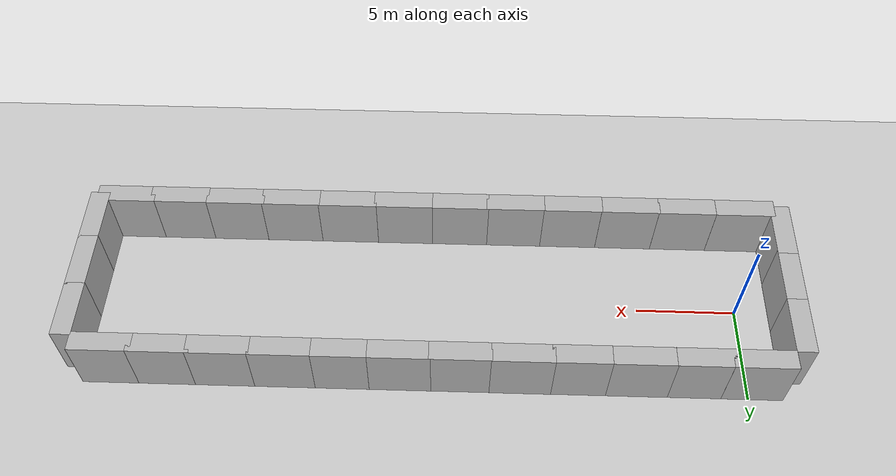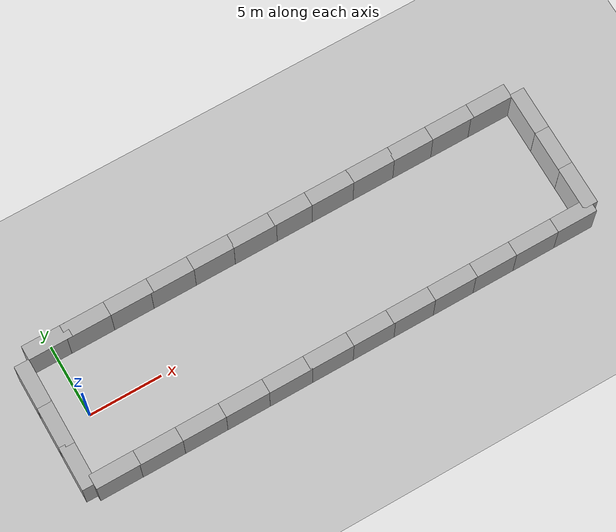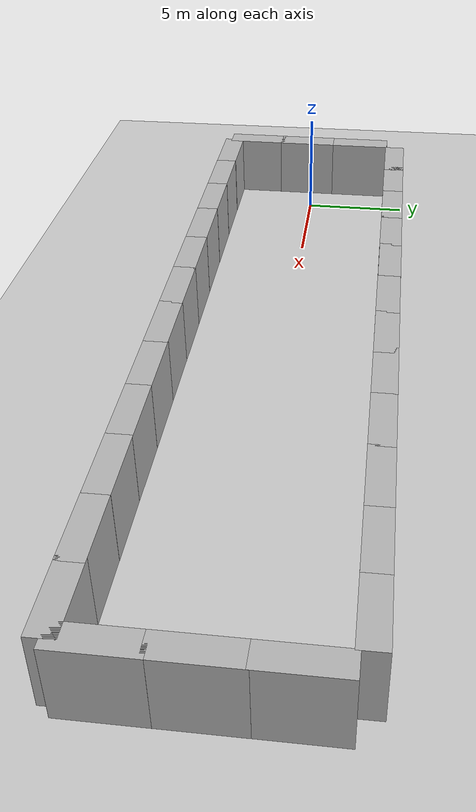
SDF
<sdf version="1.6">
 <world name="default">
  <light name="sun" type="directional">
   <pose>0 0 10 0 -0 0</pose>
   <diffuse>0.8 0.8 0.8 1</diffuse>
   <specular>0.2 0.2 0.2 1</specular>
   <attenuation>
    <range>1000</range>
    <constant>0.9</constant>
    <linear>0.01</linear>
    <quadratic>0.001</quadratic>
   </attenuation>
   <direction>-0.5 0.1 -0.9</direction>
  </light>
  <model name="ground_plane">
   <static>1</static>
   <link name="link">
    <collision name="collision">
     <geometry><plane><normal>0 0 1</normal><size>100 100</size></plane></geometry>
     <surface><friction><ode><mu>100</mu><mu2>50</mu2></ode></friction></surface>
    </collision>
    <visual name="visual">
     <cast_shadows>0</cast_shadows>
     <geometry><plane><normal>0 0 1</normal><size>100 100</size></plane></geometry>
     <material>
      <script><uri>file://media/materials/scripts/gazebo.material</uri><name>Gazebo/Grey</name></script>
     </material>
    </visual>
   </link>
  </model>
  <gravity>0 0 -9.8</gravity>
  <magnetic_field>6e-06 2.3e-05 -4.2e-05</magnetic_field>
  <atmosphere type="adiabatic"/>
  <physics name="default_physics" default="0" type="ode">
   <max_step_size>0.001</max_step_size>
   <real_time_factor>1</real_time_factor>
   <real_time_update_rate>1000</real_time_update_rate>
  </physics>
  <scene><ambient>0.4 0.4 0.4 1</ambient><background>0.7 0.7 0.7 1</background><shadows>1</shadows></scene>
  <spherical_coordinates>
   <surface_model>EARTH_WGS84</surface_model>
   <latitude_deg>0</latitude_deg>
   <longitude_deg>0</longitude_deg>
   <elevation>0</elevation>
   <heading_deg>0</heading_deg>
  </spherical_coordinates>
  <model name="brick_box_3x1x3">
   <static>1</static>
   <link name="chassis">
    <pose>0 0 1.5 0 -0 0</pose>
    <collision name="collision"><geometry><box><size>3 1 3</size></box></geometry></collision>
    <visual name="visual">
     <geometry><mesh><uri>model://brick_box_3x1x3/meshes/simple_box.dae</uri><scale>3 1 3</scale></mesh></geometry>
     <material>
      <script>
       <uri>model://brick_box_3x1x3/materials/scripts</uri>
       <uri>model://brick_box_3x1x3/materials/textures</uri>
       <name>BrickBox/Diffuse</name>
      </script>
     </material>
    </visual>
   </link>
   <pose>-0.184264 4.51435 0 0 -0 0</pose>
  </model>
  <model name="brick_box_3x1x3_clone">
   <static>1</static>
   <link name="chassis">
    <pose>0 0 1.5 0 -0 0</pose>
    <collision name="collision"><geometry><box><size>3 1 3</size></box></geometry></collision>
    <visual name="visual">
     <geometry><mesh><uri>model://brick_box_3x1x3/meshes/simple_box.dae</uri><scale>3 1 3</scale></mesh></geometry>
     <material>
      <script>
       <uri>model://brick_box_3x1x3/materials/scripts</uri>
       <uri>model://brick_box_3x1x3/materials/textures</uri>
       <name>BrickBox/Diffuse</name>
      </script>
     </material>
    </visual>
   </link>
   <pose>2.43819 4.50986 0 0 -0 0</pose>
  </model>
  <model name="brick_box_3x1x3_clone_clone">
   <static>1</static>
   <link name="chassis">
    <pose>0 0 1.5 0 -0 0</pose>
    <collision name="collision"><geometry><box><size>3 1 3</size></box></geometry></collision>
    <visual name="visual">
     <geometry><mesh><uri>model://brick_box_3x1x3/meshes/simple_box.dae</uri><scale>3 1 3</scale></mesh></geometry>
     <material>
      <script>
       <uri>model://brick_box_3x1x3/materials/scripts</uri>
       <uri>model://brick_box_3x1x3/materials/textures</uri>
       <name>BrickBox/Diffuse</name>
      </script>
     </material>
    </visual>
   </link>
   <pose>5.40727 4.51344 0 0 -0 0</pose>
  </model>
  <model name="brick_box_3x1x3_clone_clone_clone">
   <static>1</static>
   <link name="chassis">
    <pose>0 0 1.5 0 -0 0</pose>
    <collision name="collision"><geometry><box><size>3 1 3</size></box></geometry></collision>
    <visual name="visual">
     <geometry><mesh><uri>model://brick_box_3x1x3/meshes/simple_box.dae</uri><scale>3 1 3</scale></mesh></geometry>
     <material>
      <script>
       <uri>model://brick_box_3x1x3/materials/scripts</uri>
       <uri>model://brick_box_3x1x3/materials/textures</uri>
       <name>BrickBox/Diffuse</name>
      </script>
     </material>
    </visual>
   </link>
   <pose>8.21704 4.51221 0 0 -0 0</pose>
  </model>
  <model name="brick_box_3x1x3_clone_clone_clone_0">
   <static>1</static>
   <link name="chassis">
    <pose>0 0 1.5 0 -0 0</pose>
    <collision name="collision"><geometry><box><size>3 1 3</size></box></geometry></collision>
    <visual name="visual">
     <geometry><mesh><uri>model://brick_box_3x1x3/meshes/simple_box.dae</uri><scale>3 1 3</scale></mesh></geometry>
     <material>
      <script>
       <uri>model://brick_box_3x1x3/materials/scripts</uri>
       <uri>model://brick_box_3x1x3/materials/textures</uri>
       <name>BrickBox/Diffuse</name>
      </script>
     </material>
    </visual>
   </link>
   <pose>11.0675 4.51905 0 0 -0 0</pose>
  </model>
  <model name="brick_box_3x1x3_clone_clone_clone_0_clone">
   <static>1</static>
   <link name="chassis">
    <pose>0 0 1.5 0 -0 0</pose>
    <collision name="collision"><geometry><box><size>3 1 3</size></box></geometry></collision>
    <visual name="visual">
     <geometry><mesh><uri>model://brick_box_3x1x3/meshes/simple_box.dae</uri><scale>3 1 3</scale></mesh></geometry>
     <material>
      <script>
       <uri>model://brick_box_3x1x3/materials/scripts</uri>
       <uri>model://brick_box_3x1x3/materials/textures</uri>
       <name>BrickBox/Diffuse</name>
      </script>
     </material>
    </visual>
   </link>
   <pose>14.0062 4.51125 0 0 -0 0</pose>
  </model>
  <model name="brick_box_3x1x3_clone_clone_clone_0_clone_0">
   <static>1</static>
   <link name="chassis">
    <pose>0 0 1.5 0 -0 0</pose>
    <collision name="collision"><geometry><box><size>3 1 3</size></box></geometry></collision>
    <visual name="visual">
     <geometry><mesh><uri>model://brick_box_3x1x3/meshes/simple_box.dae</uri><scale>3 1 3</scale></mesh></geometry>
     <material>
      <script>
       <uri>model://brick_box_3x1x3/materials/scripts</uri>
       <uri>model://brick_box_3x1x3/materials/textures</uri>
       <name>BrickBox/Diffuse</name>
      </script>
     </material>
    </visual>
   </link>
   <pose>16.905 4.51315 0 0 -0 0</pose>
  </model>
  <model name="brick_box_3x1x3_clone_clone_clone_0_clone_1">
   <static>1</static>
   <link name="chassis">
    <pose>0 0 1.5 0 -0 0</pose>
    <collision name="collision"><geometry><box><size>3 1 3</size></box></geometry></collision>
    <visual name="visual">
     <geometry><mesh><uri>model://brick_box_3x1x3/meshes/simple_box.dae</uri><scale>3 1 3</scale></mesh></geometry>
     <material>
      <script>
       <uri>model://brick_box_3x1x3/materials/scripts</uri>
       <uri>model://brick_box_3x1x3/materials/textures</uri>
       <name>BrickBox/Diffuse</name>
      </script>
     </material>
    </visual>
   </link>
   <pose>19.5442 4.51299 0 0 -0 0</pose>
  </model>
  <model name="brick_box_3x1x3_clone_clone_clone_0_clone_1_clone">
   <static>1</static>
   <link name="chassis">
    <pose>0 0 1.5 0 -0 0</pose>
    <collision name="collision"><geometry><box><size>3 1 3</size></box></geometry></collision>
    <visual name="visual">
     <geometry><mesh><uri>model://brick_box_3x1x3/meshes/simple_box.dae</uri><scale>3 1 3</scale></mesh></geometry>
     <material>
      <script>
       <uri>model://brick_box_3x1x3/materials/scripts</uri>
       <uri>model://brick_box_3x1x3/materials/textures</uri>
       <name>BrickBox/Diffuse</name>
      </script>
     </material>
    </visual>
   </link>
   <pose>22.5083 4.51021 0 0 -0 0</pose>
  </model>
  <model name="brick_box_3x1x3_clone_clone_clone_0_clone_1_clone_0">
   <static>1</static>
   <link name="chassis">
    <pose>0 0 1.5 0 -0 0</pose>
    <collision name="collision"><geometry><box><size>3 1 3</size></box></geometry></collision>
    <visual name="visual">
     <geometry><mesh><uri>model://brick_box_3x1x3/meshes/simple_box.dae</uri><scale>3 1 3</scale></mesh></geometry>
     <material>
      <script>
       <uri>model://brick_box_3x1x3/materials/scripts</uri>
       <uri>model://brick_box_3x1x3/materials/textures</uri>
       <name>BrickBox/Diffuse</name>
      </script>
     </material>
    </visual>
   </link>
   <pose>25.4211 4.50916 0 0 -0 0</pose>
  </model>
  <model name="brick_box_3x1x3_clone_clone_clone_0_clone_1_clone_0_clone">
   <static>1</static>
   <link name="chassis">
    <pose>0 0 1.5 0 -0 0</pose>
    <collision name="collision"><geometry><box><size>3 1 3</size></box></geometry></collision>
    <visual name="visual">
     <geometry><mesh><uri>model://brick_box_3x1x3/meshes/simple_box.dae</uri><scale>3 1 3</scale></mesh></geometry>
     <material>
      <script>
       <uri>model://brick_box_3x1x3/materials/scripts</uri>
       <uri>model://brick_box_3x1x3/materials/textures</uri>
       <name>BrickBox/Diffuse</name>
      </script>
     </material>
    </visual>
   </link>
   <pose>28.2096 4.50822 0 0 -0 0</pose>
  </model>
  <model name="brick_box_3x1x3_clone_clone_clone_0_clone_1_clone_0_clone_clone">
   <static>1</static>
   <link name="chassis">
    <pose>0 0 1.5 0 -0 0</pose>
    <collision name="collision"><geometry><box><size>3 1 3</size></box></geometry></collision>
    <visual name="visual">
     <geometry><mesh><uri>model://brick_box_3x1x3/meshes/simple_box.dae</uri><scale>3 1 3</scale></mesh></geometry>
     <material>
      <script>
       <uri>model://brick_box_3x1x3/materials/scripts</uri>
       <uri>model://brick_box_3x1x3/materials/textures</uri>
       <name>BrickBox/Diffuse</name>
      </script>
     </material>
    </visual>
   </link>
   <pose>30.9719 4.50657 0 0 -0 0</pose>
  </model>
  <model name="brick_box_3x1x3_clone_0">
   <static>1</static>
   <link name="chassis">
    <pose>0 0 1.5 0 -0 0</pose>
    <collision name="collision"><geometry><box><size>3 1 3</size></box></geometry></collision>
    <visual name="visual">
     <geometry><mesh><uri>model://brick_box_3x1x3/meshes/simple_box.dae</uri><scale>3 1 3</scale></mesh></geometry>
     <material>
      <script>
       <uri>model://brick_box_3x1x3/materials/scripts</uri>
       <uri>model://brick_box_3x1x3/materials/textures</uri>
       <name>BrickBox/Diffuse</name>
      </script>
     </material>
    </visual>
   </link>
   <pose>-0.464882 -4.53048 0 0 -0 0</pose>
  </model>
  <model name="brick_box_3x1x3_clone_0_clone">
   <static>1</static>
   <link name="chassis">
    <pose>0 0 1.5 0 -0 0</pose>
    <collision name="collision"><geometry><box><size>3 1 3</size></box></geometry></collision>
    <visual name="visual">
     <geometry><mesh><uri>model://brick_box_3x1x3/meshes/simple_box.dae</uri><scale>3 1 3</scale></mesh></geometry>
     <material>
      <script>
       <uri>model://brick_box_3x1x3/materials/scripts</uri>
       <uri>model://brick_box_3x1x3/materials/textures</uri>
       <name>BrickBox/Diffuse</name>
      </script>
     </material>
    </visual>
   </link>
   <pose>2.46392 -4.53983 0 0 -0 0</pose>
  </model>
  <model name="brick_box_3x1x3_clone_0_clone_0">
   <static>1</static>
   <link name="chassis">
    <pose>0 0 1.5 0 -0 0</pose>
    <collision name="collision"><geometry><box><size>3 1 3</size></box></geometry></collision>
    <visual name="visual">
     <geometry><mesh><uri>model://brick_box_3x1x3/meshes/simple_box.dae</uri><scale>3 1 3</scale></mesh></geometry>
     <material>
      <script>
       <uri>model://brick_box_3x1x3/materials/scripts</uri>
       <uri>model://brick_box_3x1x3/materials/textures</uri>
       <name>BrickBox/Diffuse</name>
      </script>
     </material>
    </visual>
   </link>
   <pose>5.40196 -4.54289 0 0 -0 0</pose>
  </model>
  <model name="brick_box_3x1x3_clone_0_clone_1">
   <static>1</static>
   <link name="chassis">
    <pose>0 0 1.5 0 -0 0</pose>
    <collision name="collision"><geometry><box><size>3 1 3</size></box></geometry></collision>
    <visual name="visual">
     <geometry><mesh><uri>model://brick_box_3x1x3/meshes/simple_box.dae</uri><scale>3 1 3</scale></mesh></geometry>
     <material>
      <script>
       <uri>model://brick_box_3x1x3/materials/scripts</uri>
       <uri>model://brick_box_3x1x3/materials/textures</uri>
       <name>BrickBox/Diffuse</name>
      </script>
     </material>
    </visual>
   </link>
   <pose>8.35094 -4.54638 0 0 -0 0</pose>
  </model>
  <model name="brick_box_3x1x3_clone_0_clone_2">
   <static>1</static>
   <link name="chassis">
    <pose>0 0 1.5 0 -0 0</pose>
    <collision name="collision"><geometry><box><size>3 1 3</size></box></geometry></collision>
    <visual name="visual">
     <geometry><mesh><uri>model://brick_box_3x1x3/meshes/simple_box.dae</uri><scale>3 1 3</scale></mesh></geometry>
     <material>
      <script>
       <uri>model://brick_box_3x1x3/materials/scripts</uri>
       <uri>model://brick_box_3x1x3/materials/textures</uri>
       <name>BrickBox/Diffuse</name>
      </script>
     </material>
    </visual>
   </link>
   <pose>11.3172 -4.54818 0 0 -0 0</pose>
  </model>
  <model name="brick_box_3x1x3_clone_0_clone_3">
   <static>1</static>
   <link name="chassis">
    <pose>0 0 1.5 0 -0 0</pose>
    <collision name="collision"><geometry><box><size>3 1 3</size></box></geometry></collision>
    <visual name="visual">
     <geometry><mesh><uri>model://brick_box_3x1x3/meshes/simple_box.dae</uri><scale>3 1 3</scale></mesh></geometry>
     <material>
      <script>
       <uri>model://brick_box_3x1x3/materials/scripts</uri>
       <uri>model://brick_box_3x1x3/materials/textures</uri>
       <name>BrickBox/Diffuse</name>
      </script>
     </material>
    </visual>
   </link>
   <pose>14.2003 -4.54674 0 0 -0 0</pose>
  </model>
  <model name="brick_box_3x1x3_clone_0_clone_4">
   <static>1</static>
   <link name="chassis">
    <pose>0 0 1.5 0 -0 0</pose>
    <collision name="collision"><geometry><box><size>3 1 3</size></box></geometry></collision>
    <visual name="visual">
     <geometry><mesh><uri>model://brick_box_3x1x3/meshes/simple_box.dae</uri><scale>3 1 3</scale></mesh></geometry>
     <material>
      <script>
       <uri>model://brick_box_3x1x3/materials/scripts</uri>
       <uri>model://brick_box_3x1x3/materials/textures</uri>
       <name>BrickBox/Diffuse</name>
      </script>
     </material>
    </visual>
   </link>
   <pose>17.1118 -4.54628 0 0 -0 0</pose>
  </model>
  <model name="brick_box_3x1x3_clone_0_clone_5">
   <static>1</static>
   <link name="chassis">
    <pose>0 0 1.5 0 -0 0</pose>
    <collision name="collision"><geometry><box><size>3 1 3</size></box></geometry></collision>
    <visual name="visual">
     <geometry><mesh><uri>model://brick_box_3x1x3/meshes/simple_box.dae</uri><scale>3 1 3</scale></mesh></geometry>
     <material>
      <script>
       <uri>model://brick_box_3x1x3/materials/scripts</uri>
       <uri>model://brick_box_3x1x3/materials/textures</uri>
       <name>BrickBox/Diffuse</name>
      </script>
     </material>
    </visual>
   </link>
   <pose>20.01 -4.54521 0 0 -0 0</pose>
  </model>
  <model name="brick_box_3x1x3_clone_0_clone_6">
   <static>1</static>
   <link name="chassis">
    <pose>0 0 1.5 0 -0 0</pose>
    <collision name="collision"><geometry><box><size>3 1 3</size></box></geometry></collision>
    <visual name="visual">
     <geometry><mesh><uri>model://brick_box_3x1x3/meshes/simple_box.dae</uri><scale>3 1 3</scale></mesh></geometry>
     <material>
      <script>
       <uri>model://brick_box_3x1x3/materials/scripts</uri>
       <uri>model://brick_box_3x1x3/materials/textures</uri>
       <name>BrickBox/Diffuse</name>
      </script>
     </material>
    </visual>
   </link>
   <pose>22.9439 -4.54664 0 0 -0 0</pose>
  </model>
  <model name="brick_box_3x1x3_clone_0_clone_7">
   <static>1</static>
   <link name="chassis">
    <pose>0 0 1.5 0 -0 0</pose>
    <collision name="collision"><geometry><box><size>3 1 3</size></box></geometry></collision>
    <visual name="visual">
     <geometry><mesh><uri>model://brick_box_3x1x3/meshes/simple_box.dae</uri><scale>3 1 3</scale></mesh></geometry>
     <material>
      <script>
       <uri>model://brick_box_3x1x3/materials/scripts</uri>
       <uri>model://brick_box_3x1x3/materials/textures</uri>
       <name>BrickBox/Diffuse</name>
      </script>
     </material>
    </visual>
   </link>
   <pose>25.8191 -4.54832 0 0 -0 0</pose>
  </model>
  <model name="brick_box_3x1x3_clone_0_clone_8">
   <static>1</static>
   <link name="chassis">
    <pose>0 0 1.5 0 -0 0</pose>
    <collision name="collision"><geometry><box><size>3 1 3</size></box></geometry></collision>
    <visual name="visual">
     <geometry><mesh><uri>model://brick_box_3x1x3/meshes/simple_box.dae</uri><scale>3 1 3</scale></mesh></geometry>
     <material>
      <script>
       <uri>model://brick_box_3x1x3/materials/scripts</uri>
       <uri>model://brick_box_3x1x3/materials/textures</uri>
       <name>BrickBox/Diffuse</name>
      </script>
     </material>
    </visual>
   </link>
   <pose>28.7311 -4.55152 0 0 -0 0</pose>
  </model>
  <model name="brick_box_3x1x3_clone_0_clone_9">
   <static>1</static>
   <link name="chassis">
    <pose>0 0 1.5 0 -0 0</pose>
    <collision name="collision"><geometry><box><size>3 1 3</size></box></geometry></collision>
    <visual name="visual">
     <geometry><mesh><uri>model://brick_box_3x1x3/meshes/simple_box.dae</uri><scale>3 1 3</scale></mesh></geometry>
     <material>
      <script>
       <uri>model://brick_box_3x1x3/materials/scripts</uri>
       <uri>model://brick_box_3x1x3/materials/textures</uri>
       <name>BrickBox/Diffuse</name>
      </script>
     </material>
    </visual>
   </link>
   <pose>31.5169 -4.55078 0 0 -0 0</pose>
  </model>
  <model name="brick_box_3x1x3_clone_0_clone_10">
   <static>1</static>
   <link name="chassis">
    <pose>0 0 1.5 0 -0 0</pose>
    <collision name="collision"><geometry><box><size>3 1 3</size></box></geometry></collision>
    <visual name="visual">
     <geometry><mesh><uri>model://brick_box_3x1x3/meshes/simple_box.dae</uri><scale>3 1 3</scale></mesh></geometry>
     <material>
      <script>
       <uri>model://brick_box_3x1x3/materials/scripts</uri>
       <uri>model://brick_box_3x1x3/materials/textures</uri>
       <name>BrickBox/Diffuse</name>
      </script>
     </material>
    </visual>
   </link>
   <pose>-2.1761 2.57831 0 0 0 -1.57725</pose>
  </model>
  <model name="brick_box_3x1x3_clone_0_clone_10_clone">
   <static>1</static>
   <link name="chassis">
    <pose>0 0 1.5 0 -0 0</pose>
    <collision name="collision"><geometry><box><size>3 1 3</size></box></geometry></collision>
    <visual name="visual">
     <geometry><mesh><uri>model://brick_box_3x1x3/meshes/simple_box.dae</uri><scale>3 1 3</scale></mesh></geometry>
     <material>
      <script>
       <uri>model://brick_box_3x1x3/materials/scripts</uri>
       <uri>model://brick_box_3x1x3/materials/textures</uri>
       <name>BrickBox/Diffuse</name>
      </script>
     </material>
    </visual>
   </link>
   <pose>-2.1961 -0.352732 0 0 0 -1.57725</pose>
  </model>
  <model name="brick_box_3x1x3_clone_0_clone_10_clone_0">
   <static>1</static>
   <link name="chassis">
    <pose>0 0 1.5 0 -0 0</pose>
    <collision name="collision"><geometry><box><size>3 1 3</size></box></geometry></collision>
    <visual name="visual">
     <geometry><mesh><uri>model://brick_box_3x1x3/meshes/simple_box.dae</uri><scale>3 1 3</scale></mesh></geometry>
     <material>
      <script>
       <uri>model://brick_box_3x1x3/materials/scripts</uri>
       <uri>model://brick_box_3x1x3/materials/textures</uri>
       <name>BrickBox/Diffuse</name>
      </script>
     </material>
    </visual>
   </link>
   <pose>-2.22174 -3.18566 0 0 0 -1.57725</pose>
  </model>
  <model name="brick_box_3x1x3_clone_0_clone_10_clone_1">
   <static>1</static>
   <link name="chassis">
    <pose>0 0 1.5 0 -0 0</pose>
    <collision name="collision"><geometry><box><size>3 1 3</size></box></geometry></collision>
    <visual name="visual">
     <geometry><mesh><uri>model://brick_box_3x1x3/meshes/simple_box.dae</uri><scale>3 1 3</scale></mesh></geometry>
     <material>
      <script>
       <uri>model://brick_box_3x1x3/materials/scripts</uri>
       <uri>model://brick_box_3x1x3/materials/textures</uri>
       <name>BrickBox/Diffuse</name>
      </script>
     </material>
    </visual>
   </link>
   <pose>32.919 2.67949 0 0 0 -1.57725</pose>
  </model>
  <model name="brick_box_3x1x3_clone_0_clone_10_clone_2">
   <static>1</static>
   <link name="chassis">
    <pose>0 0 1.5 0 -0 0</pose>
    <collision name="collision"><geometry><box><size>3 1 3</size></box></geometry></collision>
    <visual name="visual">
     <geometry><mesh><uri>model://brick_box_3x1x3/meshes/simple_box.dae</uri><scale>3 1 3</scale></mesh></geometry>
     <material>
      <script>
       <uri>model://brick_box_3x1x3/materials/scripts</uri>
       <uri>model://brick_box_3x1x3/materials/textures</uri>
       <name>BrickBox/Diffuse</name>
      </script>
     </material>
    </visual>
   </link>
   <pose>32.9021 -0.22409 0 0 0 -1.57725</pose>
  </model>
  <model name="brick_box_3x1x3_clone_0_clone_10_clone_3">
   <static>1</static>
   <link name="chassis">
    <pose>0 0 1.5 0 -0 0</pose>
    <collision name="collision"><geometry><box><size>3 1 3</size></box></geometry></collision>
    <visual name="visual">
     <geometry><mesh><uri>model://brick_box_3x1x3/meshes/simple_box.dae</uri><scale>3 1 3</scale></mesh></geometry>
     <material>
      <script>
       <uri>model://brick_box_3x1x3/materials/scripts</uri>
       <uri>model://brick_box_3x1x3/materials/textures</uri>
       <name>BrickBox/Diffuse</name>
      </script>
     </material>
    </visual>
   </link>
   <pose>32.8852 -3.06991 0 0 0 -1.57725</pose>
  </model>
 </world>
</sdf>
